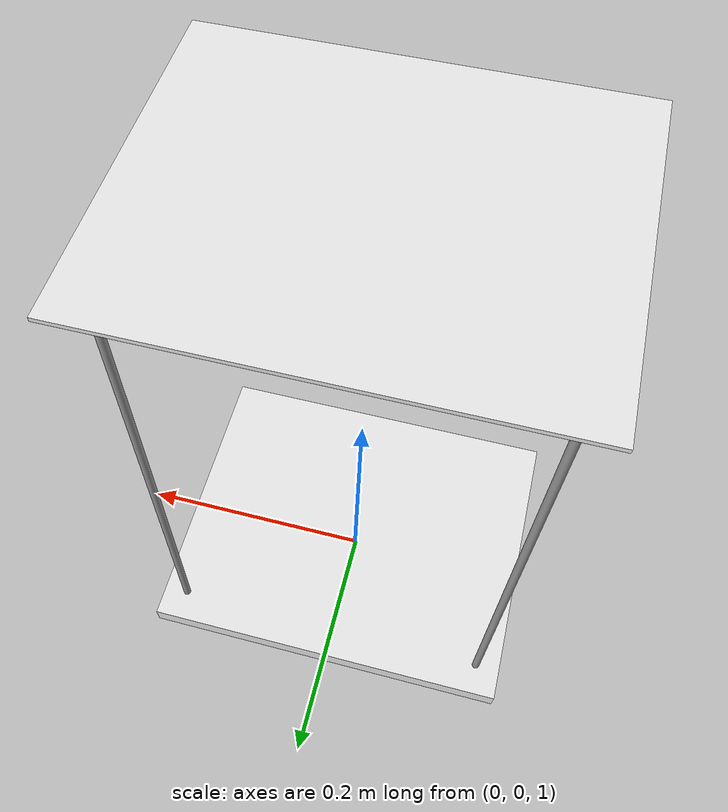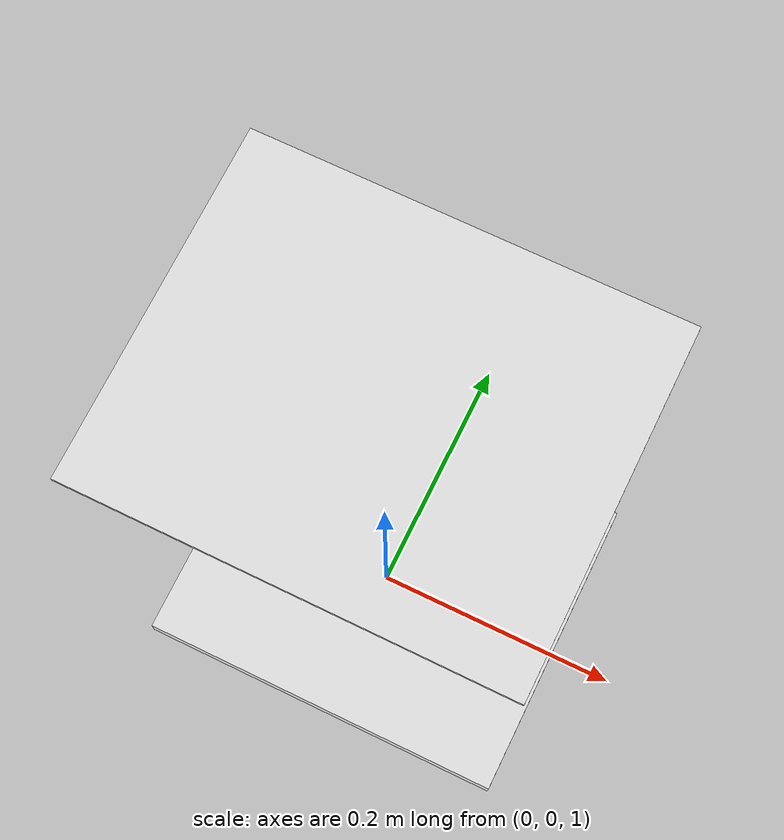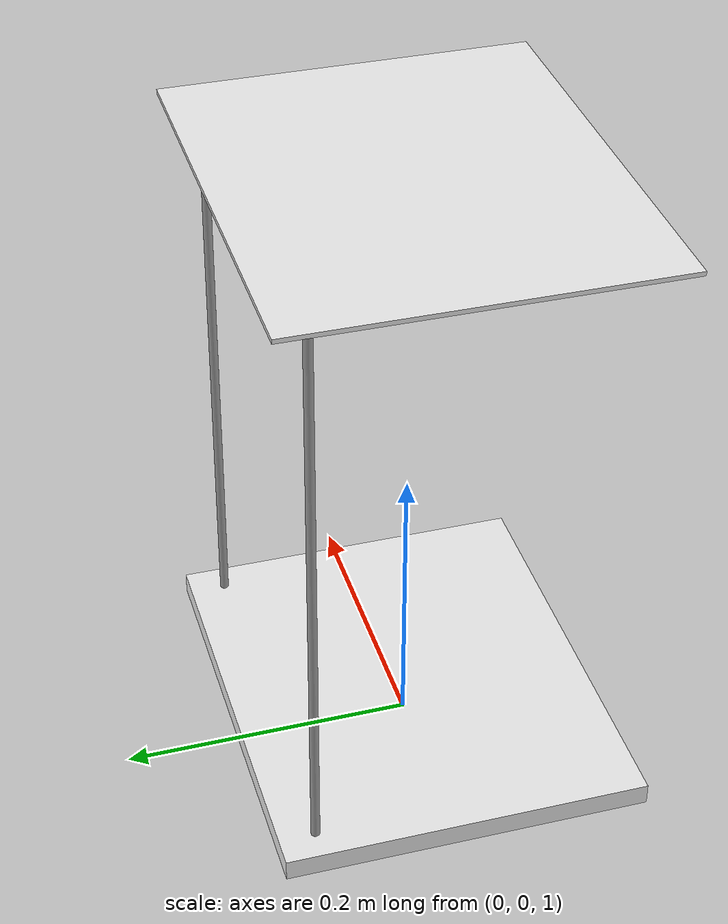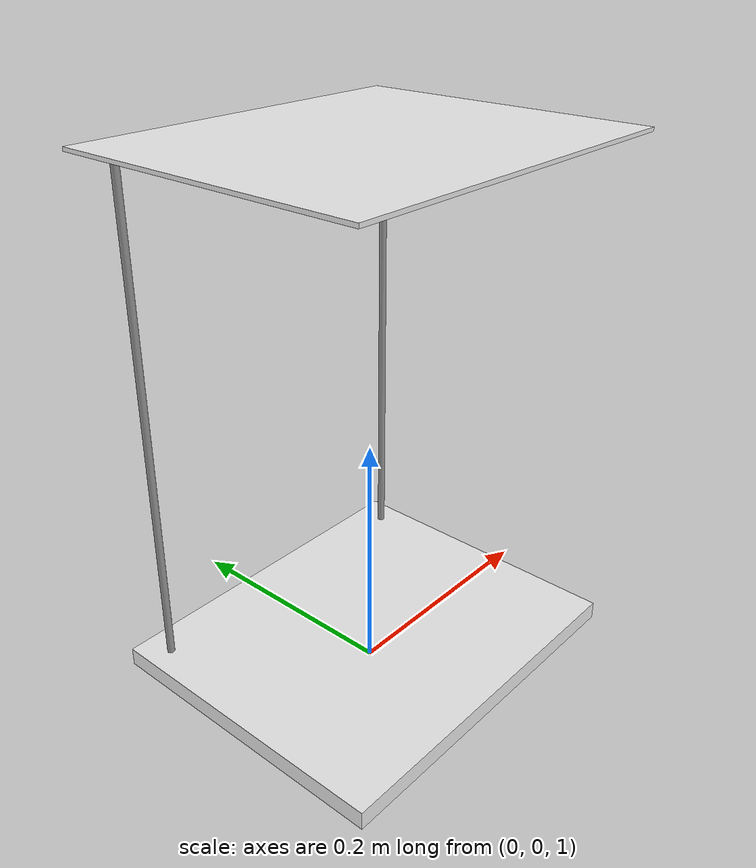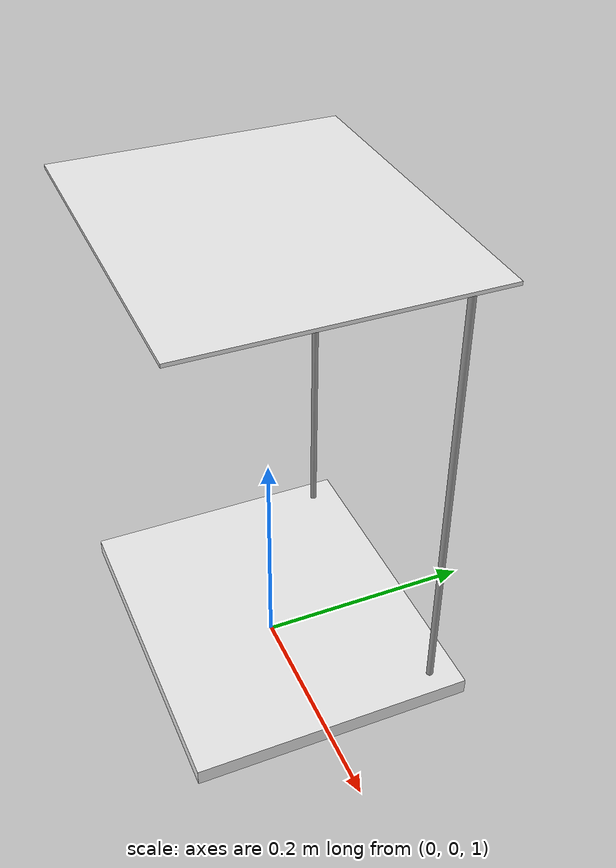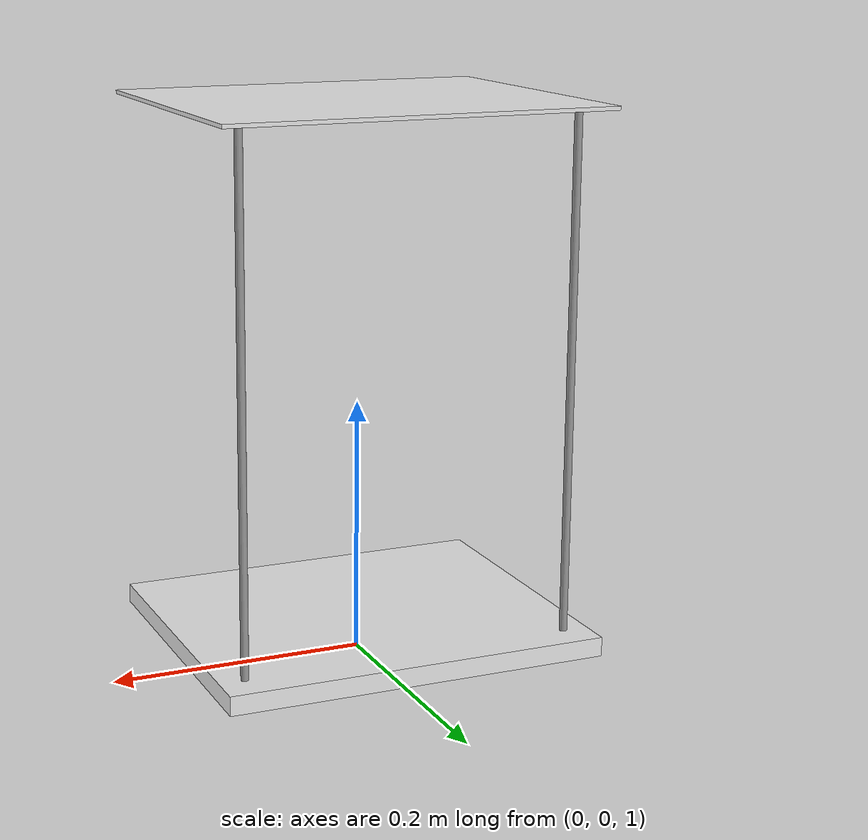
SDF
<sdf version="1.4">
 <world name="default">
  <include><uri>model://ground_plane</uri></include>
  <include><uri>model://sun</uri></include>
  <model name="platform">
   <include><uri>model://desktopquad</uri></include>
   <pose>0 0 1.022497 0 0 0</pose>
  </model>
  <physics type="ode">
   <ode>
    <solver><type>quick</type><iters>1000</iters><sor>1.3</sor></solver>
    <constraints>
     <cfm>0</cfm>
     <erp>0.2</erp>
     <contact_max_correcting_vel>100</contact_max_correcting_vel>
     <contact_surface_layer>0.001</contact_surface_layer>
    </constraints>
   </ode>
   <max_step_size>0.002</max_step_size>
   <real_time_factor>1</real_time_factor>
   <real_time_update_rate>500</real_time_update_rate>
   <gravity>0 0 -9.8</gravity>
  </physics>
 </world>
</sdf>

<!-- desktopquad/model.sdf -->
<sdf version='1.6'>
  <model name='desktopquad'>
    <link name='base_link'>
      <pose frame=''>0 0 0 0 -0 0</pose>
      <inertial>
        <mass>1</mass>
        <inertia>
          <ixx>0.166667</ixx>
          <ixy>0</ixy>
          <ixz>0</ixz>
          <iyy>0.166667</iyy>
          <iyz>0</iyz>
          <izz>0.166667</izz>
        </inertia>
        <pose frame=''>0 0 0 0 -0 0</pose>
      </inertial>
      <self_collide>0</self_collide>
      <kinematic>0</kinematic>
      <visual name='visual'>
        <geometry>
          <box>
            <size>0.3 0.25 0.015</size>
          </box>
        </geometry>
        <material>
          <script>
            <uri>file://media/materials/scripts/gazebo.material</uri>
            <name>Gazebo/White</name>
          </script>
          <ambient>1 1 1 1</ambient>
          <diffuse>1 1 1 1</diffuse>
          <specular>0 0 0 1</specular>
          <emissive>0 0 0 1</emissive>
          <shader type='vertex'>
            <normal_map>__default__</normal_map>
          </shader>
        </material>
        <pose frame=''>0 0 0 0 -0 0</pose>
        <cast_shadows>1</cast_shadows>
        <transparency>0</transparency>
      </visual>
      <collision name='collision'>
        <laser_retro>0</laser_retro>
        <max_contacts>10</max_contacts>
        <pose frame=''>0 0 0 0 -0 0</pose>
        <geometry>
          <box>
            <size>0.3 0.25 0.015</size>
          </box>
        </geometry>
        <surface>
          <friction>
            <ode>
              <mu>1</mu>
              <mu2>1</mu2>
              <fdir1>0 0 0</fdir1>
              <slip1>0</slip1>
              <slip2>0</slip2>
            </ode>
            <torsional>
              <coefficient>1</coefficient>
              <patch_radius>0</patch_radius>
              <surface_radius>0</surface_radius>
              <use_patch_radius>1</use_patch_radius>
              <ode>
                <slip>0</slip>
              </ode>
            </torsional>
          </friction>
          <bounce>
            <restitution_coefficient>0</restitution_coefficient>
            <threshold>1e+06</threshold>
          </bounce>
          <contact>
            <collide_without_contact>0</collide_without_contact>
            <collide_without_contact_bitmask>1</collide_without_contact_bitmask>
            <collide_bitmask>1</collide_bitmask>
            <ode>
              <soft_cfm>0</soft_cfm>
              <soft_erp>0.2</soft_erp>
              <kp>1e+13</kp>
              <kd>1</kd>
              <max_vel>0.01</max_vel>
              <min_depth>0</min_depth>
            </ode>
            <bullet>
              <split_impulse>1</split_impulse>
              <split_impulse_penetration_threshold>-0.01</split_impulse_penetration_threshold>
              <soft_cfm>0</soft_cfm>
              <soft_erp>0.2</soft_erp>
              <kp>1e+13</kp>
              <kd>1</kd>
            </bullet>
          </contact>
        </surface>
      </collision>
    </link>
    <link name='link_1_0'>
      <pose frame=''>-0.13 0.1 0.2032 0 -0 0</pose>
      <inertial>
        <mass>1</mass>
        <inertia>
          <ixx>0.145833</ixx>
          <ixy>0</ixy>
          <ixz>0</ixz>
          <iyy>0.145833</iyy>
          <iyz>0</iyz>
          <izz>0.125</izz>
        </inertia>
        <pose frame=''>0 0 0 0 -0 0</pose>
      </inertial>
      <self_collide>0</self_collide>
      <kinematic>0</kinematic>
      <visual name='visual'>
        <pose frame=''>0 0 0 0 -0 0</pose>
        <geometry>
          <cylinder>
            <radius>0.003</radius>
            <length>0.4064</length>
          </cylinder>
        </geometry>
        <material>
          <lighting>1</lighting>
          <script>
            <uri>file://media/materials/scripts/gazebo.material</uri>
            <name>Gazebo/Grey</name>
          </script>
          <ambient>0.3 0.3 0.3 1</ambient>
          <diffuse>0.7 0.7 0.7 1</diffuse>
          <specular>0.01 0.01 0.01 1</specular>
          <emissive>0 0 0 1</emissive>
          <shader type='vertex'>
            <normal_map>__default__</normal_map>
          </shader>
        </material>
        <cast_shadows>1</cast_shadows>
        <transparency>0</transparency>
      </visual>
      <collision name='collision'>
        <laser_retro>0</laser_retro>
        <max_contacts>10</max_contacts>
        <pose frame=''>0 0 0 0 -0 0</pose>
        <geometry>
          <cylinder>
            <radius>0.003</radius>
            <length>0.4064</length>
          </cylinder>
        </geometry>
        <surface>
          <friction>
            <ode>
              <mu>1</mu>
              <mu2>1</mu2>
              <fdir1>0 0 0</fdir1>
              <slip1>0</slip1>
              <slip2>0</slip2>
            </ode>
            <torsional>
              <coefficient>1</coefficient>
              <patch_radius>0</patch_radius>
              <surface_radius>0</surface_radius>
              <use_patch_radius>1</use_patch_radius>
              <ode>
                <slip>0</slip>
              </ode>
            </torsional>
          </friction>
          <bounce>
            <restitution_coefficient>0</restitution_coefficient>
            <threshold>1e+06</threshold>
          </bounce>
          <contact>
            <collide_without_contact>0</collide_without_contact>
            <collide_without_contact_bitmask>1</collide_without_contact_bitmask>
            <collide_bitmask>1</collide_bitmask>
            <ode>
              <soft_cfm>0</soft_cfm>
              <soft_erp>0.2</soft_erp>
              <kp>1e+13</kp>
              <kd>1</kd>
              <max_vel>0.01</max_vel>
              <min_depth>0</min_depth>
            </ode>
            <bullet>
              <split_impulse>1</split_impulse>
              <split_impulse_penetration_threshold>-0.01</split_impulse_penetration_threshold>
              <soft_cfm>0</soft_cfm>
              <soft_erp>0.2</soft_erp>
              <kp>1e+13</kp>
              <kd>1</kd>
            </bullet>
          </contact>
        </surface>
      </collision>
    </link>
    <link name='link_1_0_clone'>
      <pose frame=''>0.13 0.1 0.2032 0 -0 0</pose>
      <inertial>
        <mass>1</mass>
        <inertia>
          <ixx>0.145833</ixx>
          <ixy>0</ixy>
          <ixz>0</ixz>
          <iyy>0.145833</iyy>
          <iyz>0</iyz>
          <izz>0.125</izz>
        </inertia>
        <pose frame=''>0 0 0 0 -0 0</pose>
      </inertial>
      <self_collide>0</self_collide>
      <kinematic>0</kinematic>
      <visual name='visual'>
        <pose frame=''>0 0 0 0 -0 0</pose>
        <geometry>
          <cylinder>
            <radius>0.003</radius>
            <length>0.4064</length>
          </cylinder>
        </geometry>
        <material>
          <lighting>1</lighting>
          <script>
            <uri>file://media/materials/scripts/gazebo.material</uri>
            <name>Gazebo/Grey</name>
          </script>
          <ambient>0.3 0.3 0.3 1</ambient>
          <diffuse>0.7 0.7 0.7 1</diffuse>
          <specular>0.01 0.01 0.01 1</specular>
          <emissive>0 0 0 1</emissive>
          <shader type='vertex'>
            <normal_map>__default__</normal_map>
          </shader>
        </material>
        <cast_shadows>1</cast_shadows>
        <transparency>0</transparency>
      </visual>
      <collision name='collision'>
        <laser_retro>0</laser_retro>
        <max_contacts>10</max_contacts>
        <pose frame=''>0 0 0 0 -0 0</pose>
        <geometry>
          <cylinder>
            <radius>0.003</radius>
            <length>0.4064</length>
          </cylinder>
        </geometry>
        <surface>
          <friction>
            <ode>
              <mu>1</mu>
              <mu2>1</mu2>
              <fdir1>0 0 0</fdir1>
              <slip1>0</slip1>
              <slip2>0</slip2>
            </ode>
            <torsional>
              <coefficient>1</coefficient>
              <patch_radius>0</patch_radius>
              <surface_radius>0</surface_radius>
              <use_patch_radius>1</use_patch_radius>
              <ode>
                <slip>0</slip>
              </ode>
            </torsional>
          </friction>
          <bounce>
            <restitution_coefficient>0</restitution_coefficient>
            <threshold>1e+06</threshold>
          </bounce>
          <contact>
            <collide_without_contact>0</collide_without_contact>
            <collide_without_contact_bitmask>1</collide_without_contact_bitmask>
            <collide_bitmask>1</collide_bitmask>
            <ode>
              <soft_cfm>0</soft_cfm>
              <soft_erp>0.2</soft_erp>
              <kp>1e+13</kp>
              <kd>1</kd>
              <max_vel>0.01</max_vel>
              <min_depth>0</min_depth>
            </ode>
            <bullet>
              <split_impulse>1</split_impulse>
              <split_impulse_penetration_threshold>-0.01</split_impulse_penetration_threshold>
              <soft_cfm>0</soft_cfm>
              <soft_erp>0.2</soft_erp>
              <kp>1e+13</kp>
              <kd>1</kd>
            </bullet>
          </contact>
        </surface>
      </collision>
    </link>
    <link name='top_link'>
      <pose frame=''>-0 0 0.4094 -2e-06 -3e-06 -0.000416</pose>
      <inertial>
        <mass>0.05</mass>
        <inertia>
          <ixx>0.166667</ixx>
          <ixy>0</ixy>
          <ixz>0</ixz>
          <iyy>0.166667</iyy>
          <iyz>0</iyz>
          <izz>0.166667</izz>
        </inertia>
        <pose frame=''>0 0 0 0 -0 0</pose>
      </inertial>
      <self_collide>0</self_collide>
      <kinematic>0</kinematic>
      <gravity>1</gravity>
      <visual name='ModelPreview_30::top_link::visual_1'>
        <geometry>
          <box>
            <size>0.3 0.25 0.003</size>
          </box>
        </geometry>
        <material>
          <script>
            <uri>file://media/materials/scripts/gazebo.material</uri>
            <name>Gazebo/RedTransparentOverlay</name>
          </script>
          <ambient>1 1 1 1</ambient>
          <diffuse>1 1 1 1</diffuse>
          <specular>0 0 0 1</specular>
          <emissive>0 0 0 1</emissive>
          <shader type='vertex'>
            <normal_map>__default__</normal_map>
          </shader>
        </material>
        <pose frame=''>0 0 0 0 -0 0</pose>
        <cast_shadows>1</cast_shadows>
        <transparency>0</transparency>
      </visual>
      <visual name='visual'>
        <geometry>
          <box>
            <size>0.3 0.25 0.003</size>
          </box>
        </geometry>
        <material>
          <script>
            <uri>file://media/materials/scripts/gazebo.material</uri>
            <name>Gazebo/White</name>
          </script>
          <ambient>1 1 1 1</ambient>
          <diffuse>1 1 1 1</diffuse>
          <specular>0 0 0 1</specular>
          <emissive>0 0 0 1</emissive>
          <shader type='vertex'>
            <normal_map>__default__</normal_map>
          </shader>
        </material>
        <pose frame=''>0 0 0 0 -0 0</pose>
        <cast_shadows>1</cast_shadows>
        <transparency>0</transparency>
      </visual>
      <collision name='collision'>
        <laser_retro>0</laser_retro>
        <max_contacts>10</max_contacts>
        <pose frame=''>0 0 0 0 -0 0</pose>
        <geometry>
          <box>
            <size>0.3 0.25 0.003</size>
          </box>
        </geometry>
        <surface>
          <friction>
            <ode>
              <mu>1</mu>
              <mu2>1</mu2>
              <fdir1>0 0 0</fdir1>
              <slip1>0</slip1>
              <slip2>0</slip2>
            </ode>
            <torsional>
              <coefficient>1</coefficient>
              <patch_radius>0</patch_radius>
              <surface_radius>0</surface_radius>
              <use_patch_radius>1</use_patch_radius>
              <ode>
                <slip>0</slip>
              </ode>
            </torsional>
          </friction>
          <bounce>
            <restitution_coefficient>0</restitution_coefficient>
            <threshold>1e+06</threshold>
          </bounce>
          <contact>
            <collide_without_contact>0</collide_without_contact>
            <collide_without_contact_bitmask>1</collide_without_contact_bitmask>
            <collide_bitmask>1</collide_bitmask>
            <ode>
              <soft_cfm>0</soft_cfm>
              <soft_erp>0.2</soft_erp>
              <kp>1e+13</kp>
              <kd>1</kd>
              <max_vel>0.01</max_vel>
              <min_depth>0</min_depth>
            </ode>
            <bullet>
              <split_impulse>1</split_impulse>
              <split_impulse_penetration_threshold>-0.01</split_impulse_penetration_threshold>
              <soft_cfm>0</soft_cfm>
              <soft_erp>0.2</soft_erp>
              <kp>1e+13</kp>
              <kd>1</kd>
            </bullet>
          </contact>
        </surface>
      </collision>
    </link>
    <link name='aruco_tags'>
        <!-- I compared the Gazebo model with a piece a paper, noted where the z-axis went through the middle -->
        <!-- marker, and then measured a printed version of the marker map and found the necessary (x,y) offsets -->
        <!-- that would put the center of the middle ArUco tag in the center of Gazebo -->
        <pose frame=''>-0.004 0 0.407 3.14159 0 0</pose>
        <collision name ='collision'>
            <geometry>
                <box>
                    <size>0.2794 0.2159 0.001</size>
                </box>
            </geometry>
        </collision>
        <visual name='visual'>
            <geometry>
                <box>
                    <size>0.2794 0.2159 0.001</size>
                </box>
            </geometry>

            <material>
                <script>
                    <uri>model://aruco_mip_36h12_markermap/materials/scripts</uri>
                    <uri>model://aruco_mip_36h12_markermap/materials/textures</uri>
                    <name>aruco_mip_36h12_markermap/Diffuse</name>
                </script>
            </material>
        </visual>
    </link>
    <joint name='link_1_0_JOINT_1' type='fixed'>
      <parent>link_1_0</parent>
      <child>base_link</child>
      <pose frame=''>0 0 0 0 -0 0</pose>
      <physics>
        <ode>
          <limit>
            <cfm>0</cfm>
            <erp>0.2</erp>
          </limit>
          <suspension>
            <cfm>0</cfm>
            <erp>0.2</erp>
          </suspension>
        </ode>
      </physics>
    </joint>
    <joint name='link_1_0_JOINT_3' type='fixed'>
      <parent>link_1_0</parent>
      <child>top_link</child>
      <pose frame=''>0 0 0 0 -0 0</pose>
      <physics>
        <ode>
          <limit>
            <cfm>0</cfm>
            <erp>0.2</erp>
          </limit>
          <suspension>
            <cfm>0</cfm>
            <erp>0.2</erp>
          </suspension>
        </ode>
      </physics>
    </joint>
    <joint name='link_1_0_clone_JOINT_0' type='fixed'>
      <parent>link_1_0_clone</parent>
      <child>base_link</child>
      <pose frame=''>0 0 0 0 -0 0</pose>
      <physics>
        <ode>
          <limit>
            <cfm>0</cfm>
            <erp>0.2</erp>
          </limit>
          <suspension>
            <cfm>0</cfm>
            <erp>0.2</erp>
          </suspension>
        </ode>
      </physics>
    </joint>
    <joint name='link_1_0_clone_JOINT_2' type='fixed'>
      <parent>link_1_0_clone</parent>
      <child>top_link</child>
      <pose frame=''>0 0 0 0 -0 0</pose>
      <physics>
        <ode>
          <limit>
            <cfm>0</cfm>
            <erp>0.2</erp>
          </limit>
          <suspension>
            <cfm>0</cfm>
            <erp>0.2</erp>
          </suspension>
        </ode>
      </physics>
    </joint>
    <joint name='aruco_tags_JOINT_0' type='fixed'>
          <parent>aruco_tags</parent>
          <child>top_link</child>
          <pose frame=''>0 0 0 0 -0 0</pose>
          <physics>
            <ode>
              <limit>
                <cfm>0</cfm>
                <erp>0.2</erp>
              </limit>
              <suspension>
                <cfm>0</cfm>
                <erp>0.2</erp>
              </suspension>
            </ode>
          </physics>
        </joint>
    <static>0</static>
    <allow_auto_disable>1</allow_auto_disable>
  </model>
</sdf>
